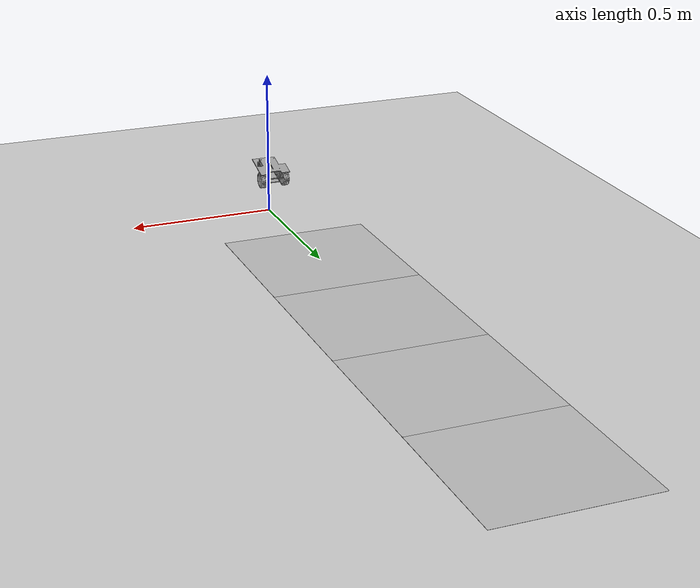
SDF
<sdf version="1.5">
 <world name="default">
  <include><uri>model://sun</uri></include>
  <include><uri>model://ground_plane</uri></include>
  <include><pose>0 0 0.12 -0.3 0 0</pose><uri>model://vehicle_no_motor</uri></include>
  <include><pose>0 0.5 0 0 0 0</pose><uri>model://concrete_slab_small</uri></include>
  <include><pose>0 1.0 0 0 0 0</pose><uri>model://concrete_slab_small</uri></include>
  <include><pose>0 1.5 0 0 0 0</pose><uri>model://concrete_slab_small</uri></include>
  <include><pose>0 2.0 0 0 0 0</pose><uri>model://concrete_slab_small</uri></include>
  <plugin name="SimEvents" filename="libSimEventsPlugin.so">
   <region><name>slab_0</name><volume><min>-0.5 0.5  0</min><max>0.5 1.0 10</max></volume></region>
   <region><name>slab_1</name><volume><min>-0.5 1.0  0</min><max>0.5 1.5 10</max></volume></region>
   <region><name>slab_2</name><volume><min>-0.5 1.5  0</min><max>0.5 2.0 10</max></volume></region>
   <region><name>slab_3</name><volume><min>-0.5 2.0  0</min><max>0.5 2.5 10</max></volume></region>
   <event><name>state</name><type>sim_state</type></event>
   <event><name>existence</name><type>existence</type></event>
   <event>
    <name>on_slab_0</name>
    <type>inclusion</type>
    <model>vehicle_no_motor</model>
    <region>slab_0</region>
   </event>
   <event>
    <name>on_slab_1</name>
    <type>inclusion</type>
    <model>vehicle_no_motor</model>
    <region>slab_1</region>
   </event>
   <event>
    <name>on_slab_2</name>
    <type>inclusion</type>
    <model>vehicle_no_motor</model>
    <region>slab_2</region>
   </event>
   <event>
    <name>on_slab_3</name>
    <type>inclusion</type>
    <model>vehicle_no_motor</model>
    <region>slab_3</region>
   </event>
  </plugin>
 </world>
</sdf>

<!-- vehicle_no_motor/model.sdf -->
<sdf version="1.5">

    <model name="vehicle_no_motor">
      <model name="chassis_v2">
        <pose>0 0 0.0132 0 0 0</pose>
        <link name="link">
          <inertial>
            <mass>0.1</mass>
            <inertia>
              <ixx>0.0001</ixx>
              <ixy>0</ixy>
              <ixz>0</ixz>
              <iyy>0.0001</iyy>
              <iyz>0</iyz>
              <izz>0.0001</izz>
            </inertia>
          </inertial>
          <collision name="collision">
            <pose>0.0005 -0.00065 0 1.57079632679 0 0</pose>
            <geometry>
              <box>
                <size>0.051 0.0035 0.153</size>
              </box>
            </geometry>
          </collision>
          <visual name="visual">
            <pose>0 0 0.0 1.57079632679 0 0</pose>
            <geometry>
              <mesh>
                <uri>model://chassis_v2/meshes/chassis_v2.dae</uri>
                <scale>0.001 0.001 0.001</scale>
              </mesh>
            </geometry>
            <material>
              <script>
                <uri>file://media/materials/scripts/gazebo.material</uri>
                <name>Gazebo/Grey</name>
              </script>
            </material>
          </visual>
        </link>
      </model>

      <model name="axle_wheels">
        <pose>0 0.040 0.028 0 0 0</pose>
        <link name="link">
          <inertial>
            <mass>0.1</mass>
            <inertia>
              <ixx>0.0001</ixx>
              <ixy>0</ixy>
              <ixz>0</ixz>
              <iyy>0.0001</iyy>
              <iyz>0</iyz>
              <izz>0.0001</izz>
            </inertia>
          </inertial>
          <collision name="axle_collision">
            <pose>0 0 0.0 0 1.57079632679 0</pose>
            <geometry>
              <cylinder>
                <radius>0.0025</radius>
                <length>0.08</length>
              </cylinder>
            </geometry>
          </collision>
          <collision name="wheel_0_collision">
            <pose>-0.0405 0 0.0 0 1.57079632679 0</pose>
            <geometry>
              <cylinder>
                <radius>0.028</radius>
                <length>0.02</length>
              </cylinder>
            </geometry>
          </collision>
          <collision name="wheel_1_collision">
            <pose>0.0405 0 0.0 0 1.57079632679 0</pose>
            <geometry>
              <cylinder>
                <radius>0.028</radius>
                <length>0.02</length>
              </cylinder>
            </geometry>
          </collision>
          <visual name="visual">
            <pose>0 0 0.0 0 0 0</pose>
            <geometry>
              <mesh>
                <uri>model://axle_wheels/meshes/axle_wheels.dae</uri>
                <scale>0.001 0.001 0.001</scale>
              </mesh>
            </geometry>
            <material>
              <script>
                <uri>file://media/materials/scripts/gazebo.material</uri>
                <name>Gazebo/Grey</name>
              </script>
            </material>
          </visual>
        </link>
      </model>

      <model name="caster_wheel">
        <pose>0 -0.09 0.0058 0 0 0</pose>
        <link name="link">
          <!-- Physics -->
          <collision name="collision">
            <pose>0 0 0.0 0 0 0</pose>
            <geometry>
              <sphere>
                <radius>0.0057</radius>
              </sphere>
            </geometry>
          </collision>
          <inertial>
            <mass>0.1</mass>
            <pose>0 0 0 0 0 0</pose>
            <inertia>
              <ixx>0.0001</ixx>
              <ixy>0</ixy>
              <ixz>0</ixz>
              <iyy>0.0001</iyy>
              <iyz>0</iyz>
              <izz>0.0001</izz>
            </inertia>
          </inertial>
          <visual name="visual">
            <geometry>
              <sphere>
                <radius>0.0057</radius>
              </sphere>
            </geometry>
            <material>
              <script>
                <name>Gazebo/Grey</name>
              </script>
            </material>
          </visual>
        </link>
      </model>

      <model name="battery_9v">
        <pose>0 -0.057 0.025 0 0 -1.57</pose>
          <link name="link">
            <inertial>
              <mass>0.1</mass>
              <inertia>
                <ixx>0.0001</ixx>
                <ixy>0</ixy>
                <ixz>0</ixz>
                <iyy>0.0001</iyy>
                <iyz>0</iyz>
                <izz>0.0001</izz>
              </inertia>
            </inertial>
            <collision name="collision">
              <pose>0 0 0.0 0 0 0</pose>
              <geometry>
                <box>
                  <size>0.027 0.055 0.017</size>
                </box>
              </geometry>
            </collision>
            <visual name="visual">
              <pose>0 0 0.0 0 0 0</pose>
              <geometry>
                <mesh>
                  <uri>model://battery_9v/meshes/battery_9v.dae</uri>
                  <scale>0.001 0.001 0.001</scale>
                </mesh>
              </geometry>
              <material>
                <script>
                  <uri>file://media/materials/scripts/gazebo.material</uri>
                  <name>Gazebo/Grey</name>
                </script>
              </material>
            </visual>
          </link>
      </model>

      <joint name="chassis_v2_battery_9v_joint" type="fixed">
        <parent>chassis_v2::link</parent>
        <child>battery_9v::link</child>
      </joint>

      <joint name="chassis_v2_axle_joint" type="revolute">
        <parent>chassis_v2::link</parent>
        <child>axle_wheels::link</child>
        <axis>
          <xyz>1 0 0</xyz>
          <limit>
            <lower>-1000000000000000</lower>
            <upper>1000000000000000</upper>
          </limit>
        </axis>
      </joint>
      <joint name="chassis_v2_caster_joint" type="ball">
        <parent>chassis_v2::link</parent>
        <child>caster_wheel::link</child>
      </joint>

    </model>

</sdf>

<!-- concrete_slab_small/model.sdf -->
<sdf version="1.5">
  <model name="concrete_slab_small">
    <static>true</static>

    <link name="slab">
      <pose>0 0 0.0001 0 0 0</pose>
      <collision name="collision">
        <geometry>
          <plane>
            <normal>0 0 1</normal>
            <size>0.5 0.5</size>
          </plane>
        </geometry>
        <surface>
          <friction>
            <ode>
              <mu>100</mu>
              <mu2>50</mu2>
            </ode>
          </friction>
        </surface>
      </collision>

      <visual name="concrete">
        <cast_shadows>false</cast_shadows>
        <geometry>
          <plane>
            <normal>0 0 1</normal>
            <size>0.5 0.5</size>
          </plane>
        </geometry>
        <material>
          <script>
            <uri>model://concrete_slab/materials/scripts/</uri>
            <uri>model://concrete_slab/materials/textures/</uri>
            <name>Mentor2/ConcreteSlab</name>
          </script>
        </material>
      </visual>
    </link>
  </model>
</sdf>
